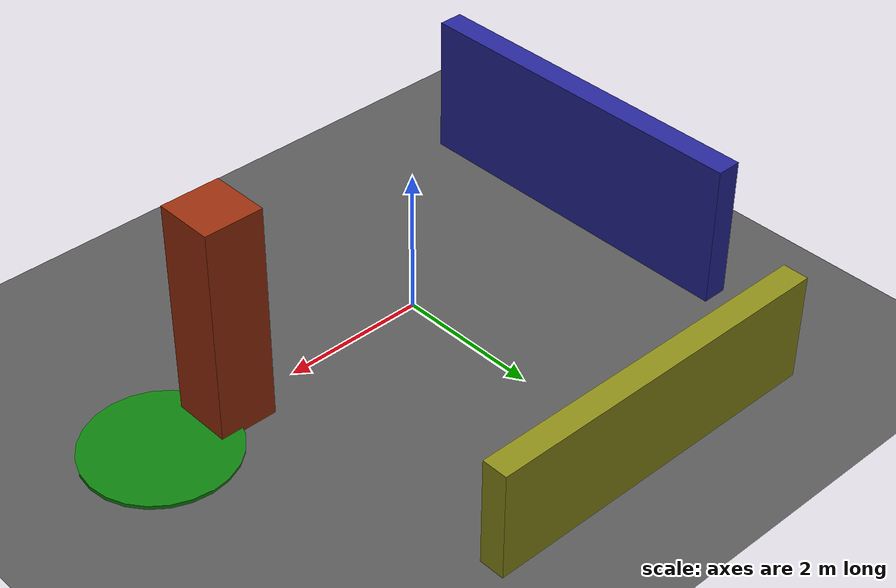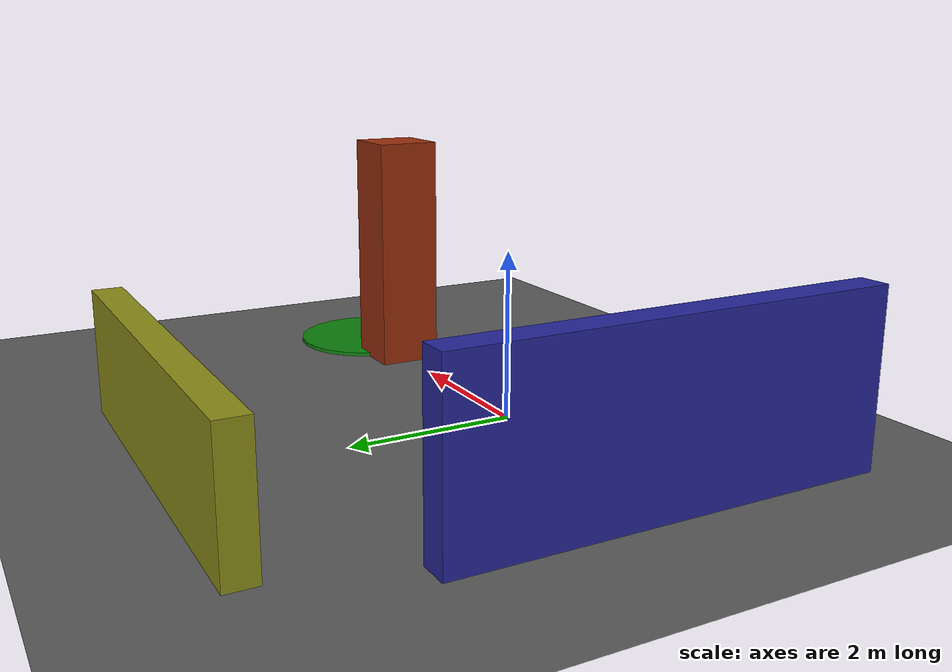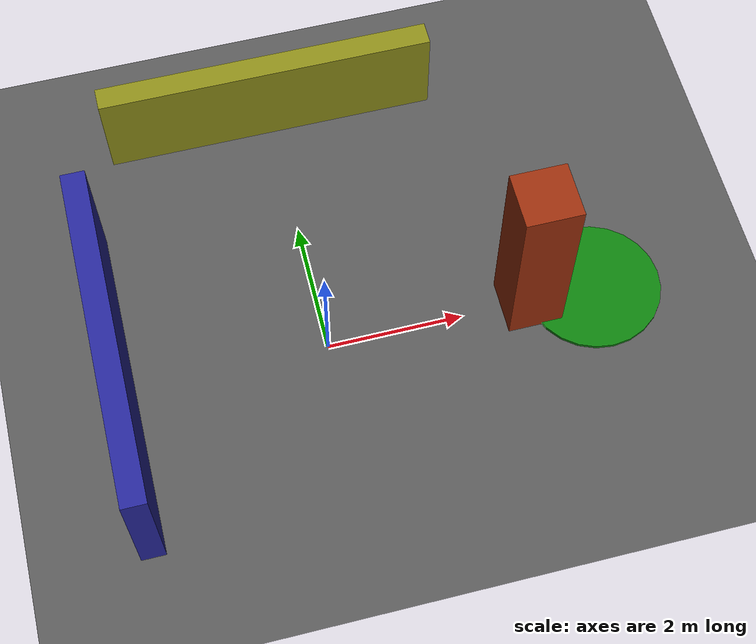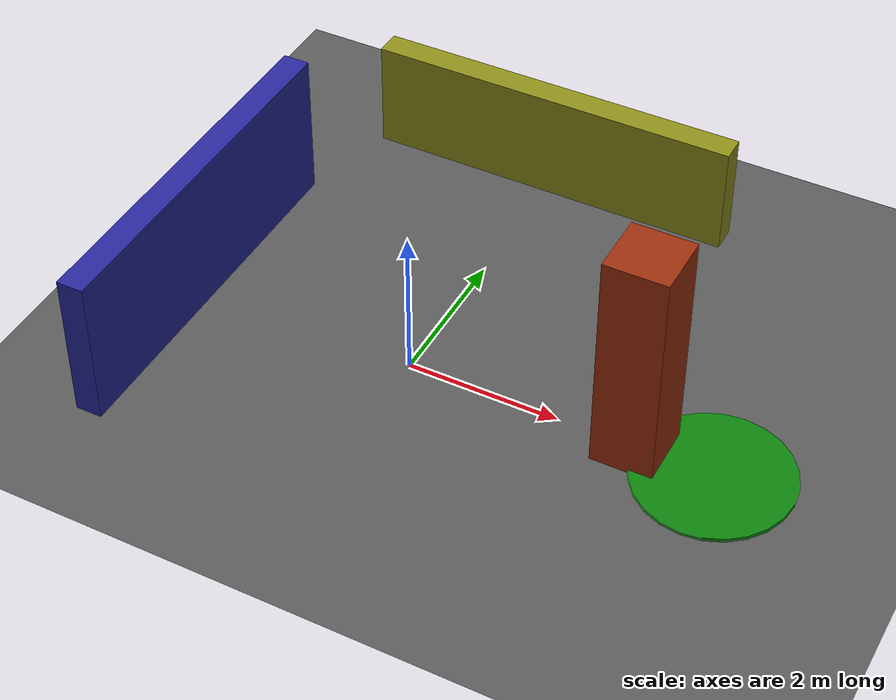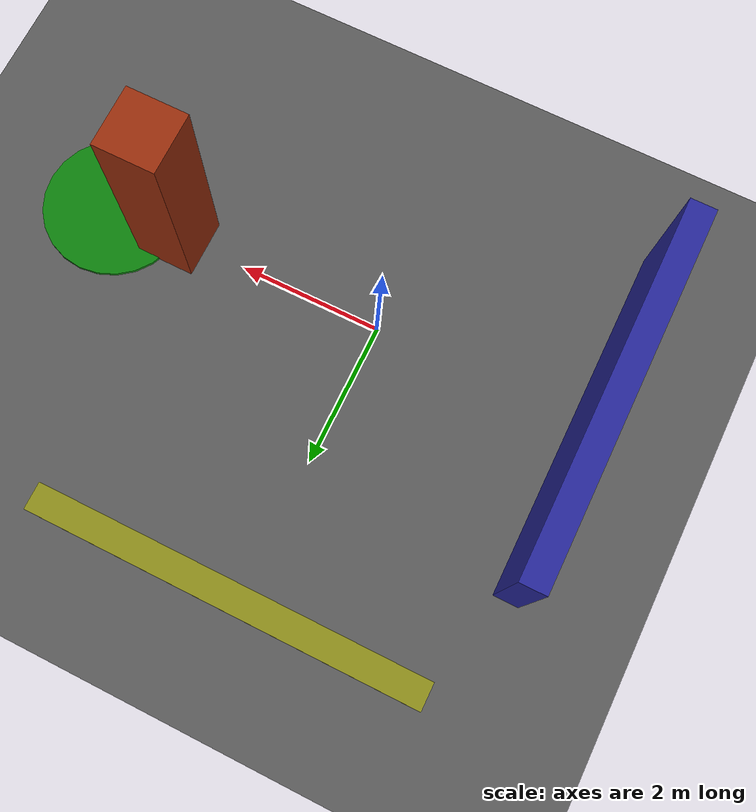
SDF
<sdf version="1.9">
 <world name="quadcopter_world">
  <gravity>0 0 -9.81</gravity>
  <physics name="1ms" type="dart">
   <max_step_size>0.001</max_step_size>
   <real_time_factor>1.0</real_time_factor>
  </physics>
  <plugin filename="gz-sim-physics-system" name="gz::sim::systems::Physics"/>
  <plugin filename="gz-sim-user-commands-system" name="gz::sim::systems::UserCommands"/>
  <plugin filename="gz-sim-scene-broadcaster-system" name="gz::sim::systems::SceneBroadcaster"/>
  <light name="sun" type="directional">
   <pose>0 0 10 0 0 0</pose>
   <diffuse>0.8 0.8 0.8 1</diffuse>
   <specular>0.2 0.2 0.2 1</specular>
   <direction>-0.5 0.1 -0.9</direction>
  </light>
  <model name="ground_plane">
   <static>true</static>
   <link name="link">
    <collision name="collision">
     <geometry><plane><normal>0 0 1</normal><size>100 100</size></plane></geometry>
    </collision>
    <visual name="visual">
     <geometry><plane><normal>0 0 1</normal><size>100 100</size></plane></geometry>
     <material><ambient>0.35 0.35 0.35 1</ambient><diffuse>0.35 0.35 0.35 1</diffuse></material>
    </visual>
   </link>
  </model>
  <model name="landing_pad">
   <static>true</static>
   <pose>4 0 0.025 0 0 0</pose>
   <link name="link">
    <collision name="collision">
     <geometry><cylinder><radius>1.0</radius><length>0.05</length></cylinder></geometry>
    </collision>
    <visual name="visual">
     <geometry><cylinder><radius>1.0</radius><length>0.05</length></cylinder></geometry>
     <material><ambient>0.05 0.35 0.05 1</ambient><diffuse>0.05 0.5 0.05 1</diffuse></material>
    </visual>
   </link>
  </model>
  <model name="obstacle_tower">
   <static>true</static>
   <pose>3 0 1.5 0 0 0</pose>
   <link name="link">
    <collision name="collision"><geometry><box><size>0.8 0.8 3.0</size></box></geometry></collision>
    <visual name="visual">
     <geometry><box><size>0.8 0.8 3.0</size></box></geometry>
     <material><ambient>0.45 0.12 0.05 1</ambient><diffuse>0.6 0.18 0.05 1</diffuse></material>
    </visual>
   </link>
  </model>
  <model name="obstacle_wall_x">
   <static>true</static>
   <pose>-3 0 1.0 0 0 0</pose>
   <link name="link">
    <collision name="collision"><geometry><box><size>0.35 5.0 2.0</size></box></geometry></collision>
    <visual name="visual">
     <geometry><box><size>0.35 5.0 2.0</size></box></geometry>
     <material><ambient>0.12 0.12 0.45 1</ambient><diffuse>0.15 0.15 0.6 1</diffuse></material>
    </visual>
   </link>
  </model>
  <model name="obstacle_wall_y">
   <static>true</static>
   <pose>0 4 0.75 0 0 0</pose>
   <link name="link">
    <collision name="collision"><geometry><box><size>5.0 0.35 1.5</size></box></geometry></collision>
    <visual name="visual">
     <geometry><box><size>5.0 0.35 1.5</size></box></geometry>
     <material><ambient>0.4 0.4 0.08 1</ambient><diffuse>0.55 0.55 0.1 1</diffuse></material>
    </visual>
   </link>
  </model>
 </world>
</sdf>
